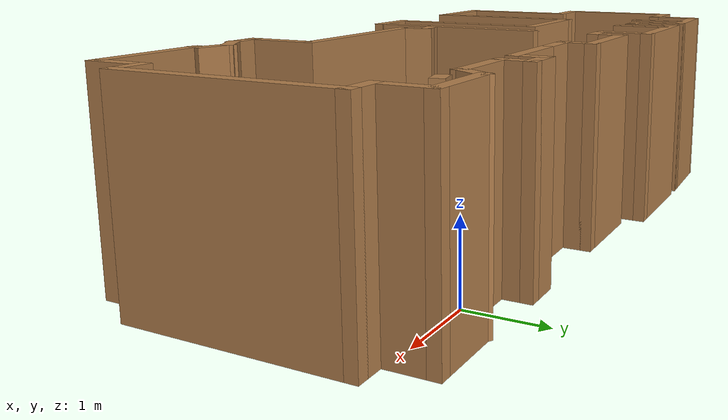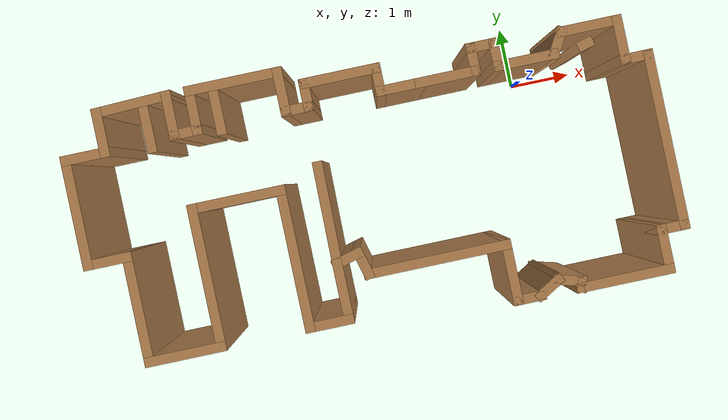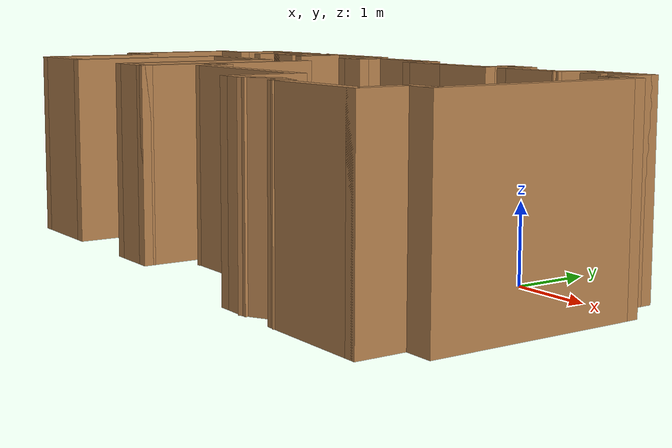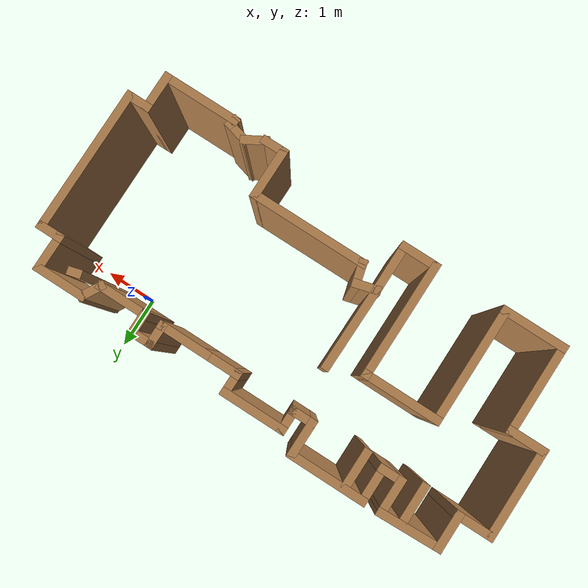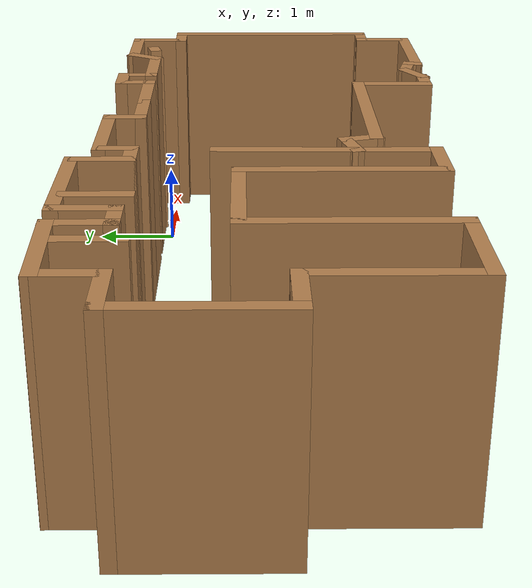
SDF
<?xml version='1.0'?>
<sdf version='1.6'>
  <model name='map_18'>
    <pose frame=''>-2.70114 -1.26619 0 0 -0 0</pose>
    <link name='Wall_10'>
      <collision name='Wall_10_Collision'>
        <geometry>
          <box>
            <size>1.25 0.15 2.5</size>
          </box>
        </geometry>
        <pose frame=''>0 0 1.25 0 -0 0</pose>
      </collision>
      <visual name='Wall_10_Visual'>
        <pose frame=''>0 0 1.25 0 -0 0</pose>
        <geometry>
          <box>
            <size>1.25 0.15 2.5</size>
          </box>
        </geometry>
        <material>
          <script>
            <uri>file://media/materials/scripts/gazebo.material</uri>
            <name>Gazebo/Wood</name>
          </script>
          <ambient>1 1 1 1</ambient>
        </material>
        <meta>
          <layer>0</layer>
        </meta>
      </visual>
      <pose frame=''>-3.27198 -1.78163 0 0 -0 0</pose>
    </link>
    <link name='Wall_11'>
      <collision name='Wall_11_Collision'>
        <geometry>
          <box>
            <size>2.25 0.15 2.5</size>
          </box>
        </geometry>
        <pose frame=''>0 0 1.25 0 -0 0</pose>
      </collision>
      <visual name='Wall_11_Visual'>
        <pose frame=''>0 0 1.25 0 -0 0</pose>
        <geometry>
          <box>
            <size>2.25 0.15 2.5</size>
          </box>
        </geometry>
        <material>
          <script>
            <uri>file://media/materials/scripts/gazebo.material</uri>
            <name>Gazebo/Wood</name>
          </script>
          <ambient>1 1 1 1</ambient>
        </material>
        <meta>
          <layer>0</layer>
        </meta>
      </visual>
      <pose frame=''>-2.72198 -0.731633 0 0 -0 1.5708</pose>
    </link>
    <link name='Wall_12'>
      <collision name='Wall_12_Collision'>
        <geometry>
          <box>
            <size>1.5 0.15 2.5</size>
          </box>
        </geometry>
        <pose frame=''>0 0 1.25 0 -0 0</pose>
      </collision>
      <visual name='Wall_12_Visual'>
        <pose frame=''>0 0 1.25 0 -0 0</pose>
        <geometry>
          <box>
            <size>1.5 0.15 2.5</size>
          </box>
        </geometry>
        <material>
          <script>
            <uri>file://media/materials/scripts/gazebo.material</uri>
            <name>Gazebo/Wood</name>
          </script>
          <ambient>1 1 1 1</ambient>
        </material>
        <meta>
          <layer>0</layer>
        </meta>
      </visual>
      <pose frame=''>-2.04698 0.318367 0 0 -0 0</pose>
    </link>
    <link name='Wall_13'>
      <collision name='Wall_13_Collision'>
        <geometry>
          <box>
            <size>2.25 0.15 2.5</size>
          </box>
        </geometry>
        <pose frame=''>0 0 1.25 0 -0 0</pose>
      </collision>
      <visual name='Wall_13_Visual'>
        <pose frame=''>0 0 1.25 0 -0 0</pose>
        <geometry>
          <box>
            <size>2.25 0.15 2.5</size>
          </box>
        </geometry>
        <material>
          <script>
            <uri>file://media/materials/scripts/gazebo.material</uri>
            <name>Gazebo/Wood</name>
          </script>
          <ambient>1 1 1 1</ambient>
        </material>
        <meta>
          <layer>0</layer>
        </meta>
      </visual>
      <pose frame=''>-1.37198 -0.731633 0 0 -0 -1.5708</pose>
    </link>
    <link name='Wall_14'>
      <collision name='Wall_14_Collision'>
        <geometry>
          <box>
            <size>0.75 0.15 2.5</size>
          </box>
        </geometry>
        <pose frame=''>0 0 1.25 0 -0 0</pose>
      </collision>
      <visual name='Wall_14_Visual'>
        <pose frame=''>0 0 1.25 0 -0 0</pose>
        <geometry>
          <box>
            <size>0.75 0.15 2.5</size>
          </box>
        </geometry>
        <material>
          <script>
            <uri>file://media/materials/scripts/gazebo.material</uri>
            <name>Gazebo/Wood</name>
          </script>
          <ambient>1 1 1 1</ambient>
        </material>
        <meta>
          <layer>0</layer>
        </meta>
      </visual>
      <pose frame=''>-1.07198 -1.78163 0 0 -0 0</pose>
    </link>
    <link name='Wall_15'>
      <collision name='Wall_15_Collision'>
        <geometry>
          <box>
            <size>1 0.15 2.5</size>
          </box>
        </geometry>
        <pose frame=''>0 0 1.25 0 -0 0</pose>
      </collision>
      <visual name='Wall_15_Visual'>
        <pose frame=''>0 0 1.25 0 -0 0</pose>
        <geometry>
          <box>
            <size>1 0.15 2.5</size>
          </box>
        </geometry>
        <material>
          <script>
            <uri>file://media/materials/scripts/gazebo.material</uri>
            <name>Gazebo/Wood</name>
          </script>
          <ambient>1 1 1 1</ambient>
        </material>
        <meta>
          <layer>0</layer>
        </meta>
      </visual>
      <pose frame=''>-0.771981 -1.35663 0 0 -0 1.5708</pose>
    </link>
    <link name='Wall_16'>
      <collision name='Wall_16_Collision'>
        <geometry>
          <box>
            <size>0.5 0.15 2.5</size>
          </box>
        </geometry>
        <pose frame=''>0 0 1.25 0 -0 0</pose>
      </collision>
      <visual name='Wall_16_Visual'>
        <pose frame=''>0 0 1.25 0 -0 0</pose>
        <geometry>
          <box>
            <size>0.5 0.15 2.5</size>
          </box>
        </geometry>
        <material>
          <script>
            <uri>file://media/materials/scripts/gazebo.material</uri>
            <name>Gazebo/Wood</name>
          </script>
          <ambient>1 1 1 1</ambient>
        </material>
        <meta>
          <layer>0</layer>
        </meta>
      </visual>
      <pose frame=''>-0.602944 -0.88634 0 0 -0 0.261799</pose>
    </link>
    <link name='Wall_17'>
      <collision name='Wall_17_Collision'>
        <geometry>
          <box>
            <size>0.5 0.15 2.5</size>
          </box>
        </geometry>
        <pose frame=''>0 0 1.25 0 -0 0</pose>
      </collision>
      <visual name='Wall_17_Visual'>
        <pose frame=''>0 0 1.25 0 -0 0</pose>
        <geometry>
          <box>
            <size>0.5 0.15 2.5</size>
          </box>
        </geometry>
        <material>
          <script>
            <uri>file://media/materials/scripts/gazebo.material</uri>
            <name>Gazebo/Wood</name>
          </script>
          <ambient>1 1 1 1</ambient>
        </material>
        <meta>
          <layer>0</layer>
        </meta>
      </visual>
      <pose frame=''>-0.388613 -1.01008 0 0 -0 -1.309</pose>
    </link>
    <link name='Wall_18'>
      <collision name='Wall_18_Collision'>
        <geometry>
          <box>
            <size>2.25 0.15 2.5</size>
          </box>
        </geometry>
        <pose frame=''>0 0 1.25 0 -0 0</pose>
      </collision>
      <visual name='Wall_18_Visual'>
        <pose frame=''>0 0 1.25 0 -0 0</pose>
        <geometry>
          <box>
            <size>2.25 0.15 2.5</size>
          </box>
        </geometry>
        <material>
          <script>
            <uri>file://media/materials/scripts/gazebo.material</uri>
            <name>Gazebo/Wood</name>
          </script>
          <ambient>1 1 1 1</ambient>
        </material>
        <meta>
          <layer>0</layer>
        </meta>
      </visual>
      <pose frame=''>0.70668 -1.17912 0 0 -0 0</pose>
    </link>
    <link name='Wall_19'>
      <collision name='Wall_19_Collision'>
        <geometry>
          <box>
            <size>1 0.15 2.5</size>
          </box>
        </geometry>
        <pose frame=''>0 0 1.25 0 -0 0</pose>
      </collision>
      <visual name='Wall_19_Visual'>
        <pose frame=''>0 0 1.25 0 -0 0</pose>
        <geometry>
          <box>
            <size>1 0.15 2.5</size>
          </box>
        </geometry>
        <material>
          <script>
            <uri>file://media/materials/scripts/gazebo.material</uri>
            <name>Gazebo/Wood</name>
          </script>
          <ambient>1 1 1 1</ambient>
        </material>
        <meta>
          <layer>0</layer>
        </meta>
      </visual>
      <pose frame=''>1.75668 -1.60412 0 0 -0 -1.5708</pose>
    </link>
    <link name='Wall_20'>
      <collision name='Wall_20_Collision'>
        <geometry>
          <box>
            <size>0.5 0.15 2.5</size>
          </box>
        </geometry>
        <pose frame=''>0 0 1.25 0 -0 0</pose>
      </collision>
      <visual name='Wall_20_Visual'>
        <pose frame=''>0 0 1.25 0 -0 0</pose>
        <geometry>
          <box>
            <size>0.5 0.15 2.5</size>
          </box>
        </geometry>
        <material>
          <script>
            <uri>file://media/materials/scripts/gazebo.material</uri>
            <name>Gazebo/Wood</name>
          </script>
          <ambient>1 1 1 1</ambient>
        </material>
        <meta>
          <layer>0</layer>
        </meta>
      </visual>
      <pose frame=''>1.93168 -2.02912 0 0 -0 0</pose>
    </link>
    <link name='Wall_21'>
      <collision name='Wall_21_Collision'>
        <geometry>
          <box>
            <size>0.5 0.15 2.5</size>
          </box>
        </geometry>
        <pose frame=''>0 0 1.25 0 -0 0</pose>
      </collision>
      <visual name='Wall_21_Visual'>
        <pose frame=''>0 0 1.25 0 -0 0</pose>
        <geometry>
          <box>
            <size>0.5 0.15 2.5</size>
          </box>
        </geometry>
        <material>
          <script>
            <uri>file://media/materials/scripts/gazebo.material</uri>
            <name>Gazebo/Wood</name>
          </script>
          <ambient>1 1 1 1</ambient>
        </material>
        <meta>
          <layer>0</layer>
        </meta>
      </visual>
      <pose frame=''>2.25823 -1.94162 0 0 -0 0.523599</pose>
    </link>
    <link name='Wall_25'>
      <collision name='Wall_25_Collision'>
        <geometry>
          <box>
            <size>0.5 0.15 2.5</size>
          </box>
        </geometry>
        <pose frame=''>0 0 1.25 0 -0 0</pose>
      </collision>
      <visual name='Wall_25_Visual'>
        <pose frame=''>0 0 1.25 0 -0 0</pose>
        <geometry>
          <box>
            <size>0.5 0.15 2.5</size>
          </box>
        </geometry>
        <material>
          <script>
            <uri>file://media/materials/scripts/gazebo.material</uri>
            <name>Gazebo/Wood</name>
          </script>
          <ambient>1 1 1 1</ambient>
        </material>
        <meta>
          <layer>0</layer>
        </meta>
      </visual>
      <pose frame=''>2.57883 -1.89941 0 0 -0 -0.261799</pose>
    </link>
    <link name='Wall_26'>
      <collision name='Wall_26_Collision'>
        <geometry>
          <box>
            <size>0.25 0.15 2.5</size>
          </box>
        </geometry>
        <pose frame=''>0 0 1.25 0 -0 0</pose>
      </collision>
      <visual name='Wall_26_Visual'>
        <pose frame=''>0 0 1.25 0 -0 0</pose>
        <geometry>
          <box>
            <size>0.25 0.15 2.5</size>
          </box>
        </geometry>
        <material>
          <script>
            <uri>file://media/materials/scripts/gazebo.material</uri>
            <name>Gazebo/Wood</name>
          </script>
          <ambient>1 1 1 1</ambient>
        </material>
        <meta>
          <layer>0</layer>
        </meta>
      </visual>
      <pose frame=''>2.73492 -1.993 0 0 -0 -1.8326</pose>
    </link>
    <link name='Wall_27'>
      <collision name='Wall_27_Collision'>
        <geometry>
          <box>
            <size>1.5 0.15 2.5</size>
          </box>
        </geometry>
        <pose frame=''>0 0 1.25 0 -0 0</pose>
      </collision>
      <visual name='Wall_27_Visual'>
        <pose frame=''>0 0 1.25 0 -0 0</pose>
        <geometry>
          <box>
            <size>1.5 0.15 2.5</size>
          </box>
        </geometry>
        <material>
          <script>
            <uri>file://media/materials/scripts/gazebo.material</uri>
            <name>Gazebo/Wood</name>
          </script>
          <ambient>1 1 1 1</ambient>
        </material>
        <meta>
          <layer>0</layer>
        </meta>
      </visual>
      <pose frame=''>3.39698 -2.0413 0 0 -0 0</pose>
    </link>
    <link name='Wall_28'>
      <collision name='Wall_28_Collision'>
        <geometry>
          <box>
            <size>0.75 0.15 2.5</size>
          </box>
        </geometry>
        <pose frame=''>0 0 1.25 0 -0 0</pose>
      </collision>
      <visual name='Wall_28_Visual'>
        <pose frame=''>0 0 1.25 0 -0 0</pose>
        <geometry>
          <box>
            <size>0.75 0.15 2.5</size>
          </box>
        </geometry>
        <material>
          <script>
            <uri>file://media/materials/scripts/gazebo.material</uri>
            <name>Gazebo/Wood</name>
          </script>
          <ambient>1 1 1 1</ambient>
        </material>
        <meta>
          <layer>0</layer>
        </meta>
      </visual>
      <pose frame=''>4.07198 -1.7413 0 0 -0 1.5708</pose>
    </link>
    <link name='Wall_29'>
      <collision name='Wall_29_Collision'>
        <geometry>
          <box>
            <size>0.5 0.15 2.5</size>
          </box>
        </geometry>
        <pose frame=''>0 0 1.25 0 -0 0</pose>
      </collision>
      <visual name='Wall_29_Visual'>
        <pose frame=''>0 0 1.25 0 -0 0</pose>
        <geometry>
          <box>
            <size>0.5 0.15 2.5</size>
          </box>
        </geometry>
        <material>
          <script>
            <uri>file://media/materials/scripts/gazebo.material</uri>
            <name>Gazebo/Wood</name>
          </script>
          <ambient>1 1 1 1</ambient>
        </material>
        <meta>
          <layer>0</layer>
        </meta>
      </visual>
      <pose frame=''>4.24698 -1.4413 0 0 -0 0</pose>
    </link>
    <link name='Wall_30'>
      <collision name='Wall_30_Collision'>
        <geometry>
          <box>
            <size>2.75 0.15 2.5</size>
          </box>
        </geometry>
        <pose frame=''>0 0 1.25 0 -0 0</pose>
      </collision>
      <visual name='Wall_30_Visual'>
        <pose frame=''>0 0 1.25 0 -0 0</pose>
        <geometry>
          <box>
            <size>2.75 0.15 2.5</size>
          </box>
        </geometry>
        <material>
          <script>
            <uri>file://media/materials/scripts/gazebo.material</uri>
            <name>Gazebo/Wood</name>
          </script>
          <ambient>1 1 1 1</ambient>
        </material>
        <meta>
          <layer>0</layer>
        </meta>
      </visual>
      <pose frame=''>4.42198 -0.1413 0 0 -0 1.5708</pose>
    </link>
    <link name='Wall_31'>
      <collision name='Wall_31_Collision'>
        <geometry>
          <box>
            <size>0.5 0.15 2.5</size>
          </box>
        </geometry>
        <pose frame=''>0 0 1.25 0 -0 0</pose>
      </collision>
      <visual name='Wall_31_Visual'>
        <pose frame=''>0 0 1.25 0 -0 0</pose>
        <geometry>
          <box>
            <size>0.5 0.15 2.5</size>
          </box>
        </geometry>
        <material>
          <script>
            <uri>file://media/materials/scripts/gazebo.material</uri>
            <name>Gazebo/Wood</name>
          </script>
          <ambient>1 1 1 1</ambient>
        </material>
        <meta>
          <layer>0</layer>
        </meta>
      </visual>
      <pose frame=''>4.24698 1.1587 0 0 -0 3.14159</pose>
    </link>
    <link name='Wall_32'>
      <collision name='Wall_32_Collision'>
        <geometry>
          <box>
            <size>0.75 0.15 2.5</size>
          </box>
        </geometry>
        <pose frame=''>0 0 1.25 0 -0 0</pose>
      </collision>
      <visual name='Wall_32_Visual'>
        <pose frame=''>0 0 1.25 0 -0 0</pose>
        <geometry>
          <box>
            <size>0.75 0.15 2.5</size>
          </box>
        </geometry>
        <material>
          <script>
            <uri>file://media/materials/scripts/gazebo.material</uri>
            <name>Gazebo/Wood</name>
          </script>
          <ambient>1 1 1 1</ambient>
        </material>
        <meta>
          <layer>0</layer>
        </meta>
      </visual>
      <pose frame=''>4.07198 1.4587 0 0 -0 1.5708</pose>
    </link>
    <link name='Wall_33'>
      <collision name='Wall_33_Collision'>
        <geometry>
          <box>
            <size>1 0.15 2.5</size>
          </box>
        </geometry>
        <pose frame=''>0 0 1.25 0 -0 0</pose>
      </collision>
      <visual name='Wall_33_Visual'>
        <pose frame=''>0 0 1.25 0 -0 0</pose>
        <geometry>
          <box>
            <size>1 0.15 2.5</size>
          </box>
        </geometry>
        <material>
          <script>
            <uri>file://media/materials/scripts/gazebo.material</uri>
            <name>Gazebo/Wood</name>
          </script>
          <ambient>1 1 1 1</ambient>
        </material>
        <meta>
          <layer>0</layer>
        </meta>
      </visual>
      <pose frame=''>3.64698 1.7587 0 0 -0 3.14159</pose>
    </link>
    <link name='Wall_38'>
      <collision name='Wall_38_Collision'>
        <geometry>
          <box>
            <size>0.5 0.15 2.5</size>
          </box>
        </geometry>
        <pose frame=''>0 0 1.25 0 -0 0</pose>
      </collision>
      <visual name='Wall_38_Visual'>
        <pose frame=''>0 0 1.25 0 -0 0</pose>
        <geometry>
          <box>
            <size>0.5 0.15 2.5</size>
          </box>
        </geometry>
        <material>
          <script>
            <uri>file://media/materials/scripts/gazebo.material</uri>
            <name>Gazebo/Wood</name>
          </script>
          <ambient>1 1 1 1</ambient>
        </material>
        <meta>
          <layer>0</layer>
        </meta>
      </visual>
      <pose frame=''>3.13448 1.60715 0 0 -0 -2.0944</pose>
    </link>
    <link name='Wall_39'>
      <collision name='Wall_39_Collision'>
        <geometry>
          <box>
            <size>1 0.15 2.5</size>
          </box>
        </geometry>
        <pose frame=''>0 0 1.25 0 -0 0</pose>
      </collision>
      <visual name='Wall_39_Visual'>
        <pose frame=''>0 0 1.25 0 -0 0</pose>
        <geometry>
          <box>
            <size>1 0.15 2.5</size>
          </box>
        </geometry>
        <material>
          <script>
            <uri>file://media/materials/scripts/gazebo.material</uri>
            <name>Gazebo/Wood</name>
          </script>
          <ambient>1 1 1 1</ambient>
        </material>
        <meta>
          <layer>0</layer>
        </meta>
      </visual>
      <pose frame=''>2.62198 1.45559 0 0 -0 3.14159</pose>
    </link>
    <link name='Wall_40'>
      <collision name='Wall_40_Collision'>
        <geometry>
          <box>
            <size>0.5 0.15 2.5</size>
          </box>
        </geometry>
        <pose frame=''>0 0 1.25 0 -0 0</pose>
      </collision>
      <visual name='Wall_40_Visual'>
        <pose frame=''>0 0 1.25 0 -0 0</pose>
        <geometry>
          <box>
            <size>0.5 0.15 2.5</size>
          </box>
        </geometry>
        <material>
          <script>
            <uri>file://media/materials/scripts/gazebo.material</uri>
            <name>Gazebo/Wood</name>
          </script>
          <ambient>1 1 1 1</ambient>
        </material>
        <meta>
          <layer>0</layer>
        </meta>
      </visual>
      <pose frame=''>2.19698 1.63059 0 0 -0 1.5708</pose>
    </link>
    <link name='Wall_41'>
      <collision name='Wall_41_Collision'>
        <geometry>
          <box>
            <size>0.5 0.15 2.5</size>
          </box>
        </geometry>
        <pose frame=''>0 0 1.25 0 -0 0</pose>
      </collision>
      <visual name='Wall_41_Visual'>
        <pose frame=''>0 0 1.25 0 -0 0</pose>
        <geometry>
          <box>
            <size>0.5 0.15 2.5</size>
          </box>
        </geometry>
        <material>
          <script>
            <uri>file://media/materials/scripts/gazebo.material</uri>
            <name>Gazebo/Wood</name>
          </script>
          <ambient>1 1 1 1</ambient>
        </material>
        <meta>
          <layer>0</layer>
        </meta>
      </visual>
      <pose frame=''>2.02198 1.80559 0 0 -0 3.14159</pose>
    </link>
    <link name='Wall_42'>
      <collision name='Wall_42_Collision'>
        <geometry>
          <box>
            <size>0.5 0.15 2.5</size>
          </box>
        </geometry>
        <pose frame=''>0 0 1.25 0 -0 0</pose>
      </collision>
      <visual name='Wall_42_Visual'>
        <pose frame=''>0 0 1.25 0 -0 0</pose>
        <geometry>
          <box>
            <size>0.5 0.15 2.5</size>
          </box>
        </geometry>
        <material>
          <script>
            <uri>file://media/materials/scripts/gazebo.material</uri>
            <name>Gazebo/Wood</name>
          </script>
          <ambient>1 1 1 1</ambient>
        </material>
        <meta>
          <layer>0</layer>
        </meta>
      </visual>
      <pose frame=''>1.84698 1.63059 0 0 -0 -1.5708</pose>
    </link>
    <link name='Wall_43'>
      <collision name='Wall_43_Collision'>
        <geometry>
          <box>
            <size>1 0.15 2.5</size>
          </box>
        </geometry>
        <pose frame=''>0 0 1.25 0 -0 0</pose>
      </collision>
      <visual name='Wall_43_Visual'>
        <pose frame=''>0 0 1.25 0 -0 0</pose>
        <geometry>
          <box>
            <size>1 0.15 2.5</size>
          </box>
        </geometry>
        <material>
          <script>
            <uri>file://media/materials/scripts/gazebo.material</uri>
            <name>Gazebo/Wood</name>
          </script>
          <ambient>1 1 1 1</ambient>
        </material>
        <meta>
          <layer>0</layer>
        </meta>
      </visual>
      <pose frame=''>1.42198 1.45559 0 0 -0 3.14159</pose>
    </link>
    <link name='Wall_44'>
      <collision name='Wall_44_Collision'>
        <geometry>
          <box>
            <size>0.75 0.15 2.5</size>
          </box>
        </geometry>
        <pose frame=''>0 0 1.25 0 -0 0</pose>
      </collision>
      <visual name='Wall_44_Visual'>
        <pose frame=''>0 0 1.25 0 -0 0</pose>
        <geometry>
          <box>
            <size>0.75 0.15 2.5</size>
          </box>
        </geometry>
        <material>
          <script>
            <uri>file://media/materials/scripts/gazebo.material</uri>
            <name>Gazebo/Wood</name>
          </script>
          <ambient>1 1 1 1</ambient>
        </material>
        <meta>
          <layer>0</layer>
        </meta>
      </visual>
      <pose frame=''>0.696981 1.45559 0 0 -0 3.14159</pose>
    </link>
    <link name='Wall_45'>
      <collision name='Wall_45_Collision'>
        <geometry>
          <box>
            <size>0.5 0.15 2.5</size>
          </box>
        </geometry>
        <pose frame=''>0 0 1.25 0 -0 0</pose>
      </collision>
      <visual name='Wall_45_Visual'>
        <pose frame=''>0 0 1.25 0 -0 0</pose>
        <geometry>
          <box>
            <size>0.5 0.15 2.5</size>
          </box>
        </geometry>
        <material>
          <script>
            <uri>file://media/materials/scripts/gazebo.material</uri>
            <name>Gazebo/Wood</name>
          </script>
          <ambient>1 1 1 1</ambient>
        </material>
        <meta>
          <layer>0</layer>
        </meta>
      </visual>
      <pose frame=''>0.396981 1.63059 0 0 -0 1.5708</pose>
    </link>
    <link name='Wall_46'>
      <collision name='Wall_46_Collision'>
        <geometry>
          <box>
            <size>1.25 0.15 2.5</size>
          </box>
        </geometry>
        <pose frame=''>0 0 1.25 0 -0 0</pose>
      </collision>
      <visual name='Wall_46_Visual'>
        <pose frame=''>0 0 1.25 0 -0 0</pose>
        <geometry>
          <box>
            <size>1.25 0.15 2.5</size>
          </box>
        </geometry>
        <material>
          <script>
            <uri>file://media/materials/scripts/gazebo.material</uri>
            <name>Gazebo/Wood</name>
          </script>
          <ambient>1 1 1 1</ambient>
        </material>
        <meta>
          <layer>0</layer>
        </meta>
      </visual>
      <pose frame=''>-0.153019 1.80559 0 0 -0 3.14159</pose>
    </link>
    <link name='Wall_47'>
      <collision name='Wall_47_Collision'>
        <geometry>
          <box>
            <size>0.5 0.15 2.5</size>
          </box>
        </geometry>
        <pose frame=''>0 0 1.25 0 -0 0</pose>
      </collision>
      <visual name='Wall_47_Visual'>
        <pose frame=''>0 0 1.25 0 -0 0</pose>
        <geometry>
          <box>
            <size>0.5 0.15 2.5</size>
          </box>
        </geometry>
        <material>
          <script>
            <uri>file://media/materials/scripts/gazebo.material</uri>
            <name>Gazebo/Wood</name>
          </script>
          <ambient>1 1 1 1</ambient>
        </material>
        <meta>
          <layer>0</layer>
        </meta>
      </visual>
      <pose frame=''>-0.703019 1.63059 0 0 -0 -1.5708</pose>
    </link>
    <link name='Wall_48'>
      <collision name='Wall_48_Collision'>
        <geometry>
          <box>
            <size>0.5 0.15 2.5</size>
          </box>
        </geometry>
        <pose frame=''>0 0 1.25 0 -0 0</pose>
      </collision>
      <visual name='Wall_48_Visual'>
        <pose frame=''>0 0 1.25 0 -0 0</pose>
        <geometry>
          <box>
            <size>0.5 0.15 2.5</size>
          </box>
        </geometry>
        <material>
          <script>
            <uri>file://media/materials/scripts/gazebo.material</uri>
            <name>Gazebo/Wood</name>
          </script>
          <ambient>1 1 1 1</ambient>
        </material>
        <meta>
          <layer>0</layer>
        </meta>
      </visual>
      <pose frame=''>-0.878019 1.45559 0 0 -0 3.14159</pose>
    </link>
    <link name='Wall_5'>
      <collision name='Wall_5_Collision'>
        <geometry>
          <box>
            <size>0.75 0.15 2.5</size>
          </box>
        </geometry>
        <pose frame=''>0 0 1.25 0 -0 0</pose>
      </collision>
      <visual name='Wall_5_Visual'>
        <pose frame=''>0 0 1.25 0 -0 0</pose>
        <geometry>
          <box>
            <size>0.75 0.15 2.5</size>
          </box>
        </geometry>
        <material>
          <script>
            <uri>file://media/materials/scripts/gazebo.material</uri>
            <name>Gazebo/Wood</name>
          </script>
          <ambient>1 1 1 1</ambient>
        </material>
        <meta>
          <layer>0</layer>
        </meta>
      </visual>
      <pose frame=''>-3.82198 1.71837 0 0 -0 -1.5708</pose>
    </link>
    <link name='Wall_51'>
      <collision name='Wall_51_Collision'>
        <geometry>
          <box>
            <size>0.75 0.15 2.5</size>
          </box>
        </geometry>
        <pose frame=''>0 0 1.25 0 -0 0</pose>
      </collision>
      <visual name='Wall_51_Visual'>
        <pose frame=''>0 0 1.25 0 -0 0</pose>
        <geometry>
          <box>
            <size>0.75 0.15 2.5</size>
          </box>
        </geometry>
        <material>
          <script>
            <uri>file://media/materials/scripts/gazebo.material</uri>
            <name>Gazebo/Wood</name>
          </script>
          <ambient>1 1 1 1</ambient>
        </material>
        <meta>
          <layer>0</layer>
        </meta>
      </visual>
      <pose frame=''>-1.05302 1.75559 0 0 -0 1.5708</pose>
    </link>
    <link name='Wall_52'>
      <collision name='Wall_52_Collision'>
        <geometry>
          <box>
            <size>1.5 0.15 2.5</size>
          </box>
        </geometry>
        <pose frame=''>0 0 1.25 0 -0 0</pose>
      </collision>
      <visual name='Wall_52_Visual'>
        <pose frame=''>0 0 1.25 0 -0 0</pose>
        <geometry>
          <box>
            <size>1.5 0.15 2.5</size>
          </box>
        </geometry>
        <material>
          <script>
            <uri>file://media/materials/scripts/gazebo.material</uri>
            <name>Gazebo/Wood</name>
          </script>
          <ambient>1 1 1 1</ambient>
        </material>
        <meta>
          <layer>0</layer>
        </meta>
      </visual>
      <pose frame=''>-1.72802 2.05559 0 0 -0 3.14159</pose>
    </link>
    <link name='Wall_53'>
      <collision name='Wall_53_Collision'>
        <geometry>
          <box>
            <size>0.75 0.15 2.5</size>
          </box>
        </geometry>
        <pose frame=''>0 0 1.25 0 -0 0</pose>
      </collision>
      <visual name='Wall_53_Visual'>
        <pose frame=''>0 0 1.25 0 -0 0</pose>
        <geometry>
          <box>
            <size>0.75 0.15 2.5</size>
          </box>
        </geometry>
        <material>
          <script>
            <uri>file://media/materials/scripts/gazebo.material</uri>
            <name>Gazebo/Wood</name>
          </script>
          <ambient>1 1 1 1</ambient>
        </material>
        <meta>
          <layer>0</layer>
        </meta>
      </visual>
      <pose frame=''>-2.40302 1.75559 0 0 -0 -1.5708</pose>
    </link>
    <link name='Wall_54'>
      <collision name='Wall_54_Collision'>
        <geometry>
          <box>
            <size>0.5 0.15 2.5</size>
          </box>
        </geometry>
        <pose frame=''>0 0 1.25 0 -0 0</pose>
      </collision>
      <visual name='Wall_54_Visual'>
        <pose frame=''>0 0 1.25 0 -0 0</pose>
        <geometry>
          <box>
            <size>0.5 0.15 2.5</size>
          </box>
        </geometry>
        <material>
          <script>
            <uri>file://media/materials/scripts/gazebo.material</uri>
            <name>Gazebo/Wood</name>
          </script>
          <ambient>1 1 1 1</ambient>
        </material>
        <meta>
          <layer>0</layer>
        </meta>
      </visual>
      <pose frame=''>-2.57802 1.45559 0 0 -0 3.14159</pose>
    </link>
    <link name='Wall_55'>
      <collision name='Wall_55_Collision'>
        <geometry>
          <box>
            <size>0.75 0.15 2.5</size>
          </box>
        </geometry>
        <pose frame=''>0 0 1.25 0 -0 0</pose>
      </collision>
      <visual name='Wall_55_Visual'>
        <pose frame=''>0 0 1.25 0 -0 0</pose>
        <geometry>
          <box>
            <size>0.75 0.15 2.5</size>
          </box>
        </geometry>
        <material>
          <script>
            <uri>file://media/materials/scripts/gazebo.material</uri>
            <name>Gazebo/Wood</name>
          </script>
          <ambient>1 1 1 1</ambient>
        </material>
        <meta>
          <layer>0</layer>
        </meta>
      </visual>
      <pose frame=''>-2.75302 1.75559 0 0 -0 1.5708</pose>
    </link>
    <link name='Wall_56'>
      <collision name='Wall_56_Collision'>
        <geometry>
          <box>
            <size>1.21961 0.15 2.5</size>
          </box>
        </geometry>
        <pose frame=''>0 0 1.25 0 -0 0</pose>
      </collision>
      <visual name='Wall_56_Visual'>
        <pose frame=''>0 0 1.25 0 -0 0</pose>
        <geometry>
          <box>
            <size>1.21961 0.15 2.5</size>
          </box>
        </geometry>
        <material>
          <script>
            <uri>file://media/materials/scripts/gazebo.material</uri>
            <name>Gazebo/Wood</name>
          </script>
          <ambient>1 1 1 1</ambient>
        </material>
        <meta>
          <layer>0</layer>
        </meta>
      </visual>
      <pose frame=''>-3.2875 2.03698 0 0 -0 -3.10678</pose>
    </link>
    <link name='Wall_58'>
      <collision name='Wall_58_Collision'>
        <geometry>
          <box>
            <size>1.63214 0.15 2.5</size>
          </box>
        </geometry>
        <pose frame=''>0 0 1.25 0 -0 0</pose>
      </collision>
      <visual name='Wall_58_Visual'>
        <pose frame=''>0 0 1.25 0 -0 0</pose>
        <geometry>
          <box>
            <size>1.63214 0.15 2.5</size>
          </box>
        </geometry>
        <material>
          <script>
            <uri>file://media/materials/scripts/gazebo.material</uri>
            <name>Gazebo/Wood</name>
          </script>
          <ambient>1 1 1 1</ambient>
        </material>
        <meta>
          <layer>0</layer>
        </meta>
      </visual>
      <pose frame=''>-0.762881 -0.190621 0 0 -0 -1.58308</pose>
    </link>
    <link name='Wall_6'>
      <collision name='Wall_6_Collision'>
        <geometry>
          <box>
            <size>0.75 0.15 2.5</size>
          </box>
        </geometry>
        <pose frame=''>0 0 1.25 0 -0 0</pose>
      </collision>
      <visual name='Wall_6_Visual'>
        <pose frame=''>0 0 1.25 0 -0 0</pose>
        <geometry>
          <box>
            <size>0.75 0.15 2.5</size>
          </box>
        </geometry>
        <material>
          <script>
            <uri>file://media/materials/scripts/gazebo.material</uri>
            <name>Gazebo/Wood</name>
          </script>
          <ambient>1 1 1 1</ambient>
        </material>
        <meta>
          <layer>0</layer>
        </meta>
      </visual>
      <pose frame=''>-4.12198 1.41837 0 0 -0 3.14159</pose>
    </link>
    <link name='Wall_64'>
      <collision name='Wall_64_Collision'>
        <geometry>
          <box>
            <size>0.75 0.15 2.5</size>
          </box>
        </geometry>
        <pose frame=''>0 0 1.25 0 -0 0</pose>
      </collision>
      <visual name='Wall_64_Visual'>
        <pose frame=''>0 0 1.25 0 -0 0</pose>
        <geometry>
          <box>
            <size>0.75 0.15 2.5</size>
          </box>
        </geometry>
        <material>
          <script>
            <uri>file://media/materials/scripts/gazebo.material</uri>
            <name>Gazebo/Wood</name>
          </script>
          <ambient>1 1 1 1</ambient>
        </material>
        <meta>
          <layer>0</layer>
        </meta>
      </visual>
      <pose frame=''>-3.12106 1.63902 0 0 -0 -1.5708</pose>
    </link>
    <link name='Wall_66'>
      <collision name='Wall_66_Collision'>
        <geometry>
          <box>
            <size>0.75 0.15 2.5</size>
          </box>
        </geometry>
        <pose frame=''>0 0 1.25 0 -0 0</pose>
      </collision>
      <visual name='Wall_66_Visual'>
        <pose frame=''>0 0 1.25 0 -0 0</pose>
        <geometry>
          <box>
            <size>0.75 0.15 2.5</size>
          </box>
        </geometry>
        <material>
          <script>
            <uri>file://media/materials/scripts/gazebo.material</uri>
            <name>Gazebo/Wood</name>
          </script>
          <ambient>1 1 1 1</ambient>
        </material>
        <meta>
          <layer>0</layer>
        </meta>
      </visual>
      <pose frame=''>-2.04983 1.68357 0 0 -0 1.5708</pose>
    </link>
    <link name='Wall_69'>
      <collision name='Wall_69_Collision'>
        <geometry>
          <box>
            <size>0.25 0.15 2.5</size>
          </box>
        </geometry>
        <pose frame=''>0 0 1.25 0 -0 0</pose>
      </collision>
      <visual name='Wall_69_Visual'>
        <pose frame=''>0 0 1.25 0 -0 0</pose>
        <geometry>
          <box>
            <size>0.25 0.15 2.5</size>
          </box>
        </geometry>
        <material>
          <script>
            <uri>file://media/materials/scripts/gazebo.material</uri>
            <name>Gazebo/Wood</name>
          </script>
          <ambient>1 1 1 1</ambient>
        </material>
        <meta>
          <layer>0</layer>
        </meta>
      </visual>
      <pose frame=''>3.53572 1.50288 0 0 -0 -2.87979</pose>
    </link>
    <link name='Wall_7'>
      <collision name='Wall_7_Collision'>
        <geometry>
          <box>
            <size>1.75 0.15 2.5</size>
          </box>
        </geometry>
        <pose frame=''>0 0 1.25 0 -0 0</pose>
      </collision>
      <visual name='Wall_7_Visual'>
        <pose frame=''>0 0 1.25 0 -0 0</pose>
        <geometry>
          <box>
            <size>1.75 0.15 2.5</size>
          </box>
        </geometry>
        <material>
          <script>
            <uri>file://media/materials/scripts/gazebo.material</uri>
            <name>Gazebo/Wood</name>
          </script>
          <ambient>1 1 1 1</ambient>
        </material>
        <meta>
          <layer>0</layer>
        </meta>
      </visual>
      <pose frame=''>-4.42198 0.618367 0 0 -0 -1.5708</pose>
    </link>
    <link name='Wall_8'>
      <collision name='Wall_8_Collision'>
        <geometry>
          <box>
            <size>0.75 0.15 2.5</size>
          </box>
        </geometry>
        <pose frame=''>0 0 1.25 0 -0 0</pose>
      </collision>
      <visual name='Wall_8_Visual'>
        <pose frame=''>0 0 1.25 0 -0 0</pose>
        <geometry>
          <box>
            <size>0.75 0.15 2.5</size>
          </box>
        </geometry>
        <material>
          <script>
            <uri>file://media/materials/scripts/gazebo.material</uri>
            <name>Gazebo/Wood</name>
          </script>
          <ambient>1 1 1 1</ambient>
        </material>
        <meta>
          <layer>0</layer>
        </meta>
      </visual>
      <pose frame=''>-4.12198 -0.181633 0 0 -0 0</pose>
    </link>
    <link name='Wall_9'>
      <collision name='Wall_9_Collision'>
        <geometry>
          <box>
            <size>1.75 0.15 2.5</size>
          </box>
        </geometry>
        <pose frame=''>0 0 1.25 0 -0 0</pose>
      </collision>
      <visual name='Wall_9_Visual'>
        <pose frame=''>0 0 1.25 0 -0 0</pose>
        <geometry>
          <box>
            <size>1.75 0.15 2.5</size>
          </box>
        </geometry>
        <material>
          <script>
            <uri>file://media/materials/scripts/gazebo.material</uri>
            <name>Gazebo/Wood</name>
          </script>
          <ambient>1 1 1 1</ambient>
        </material>
        <meta>
          <layer>0</layer>
        </meta>
      </visual>
      <pose frame=''>-3.82198 -0.981633 0 0 -0 -1.5708</pose>
    </link>
    <static>1</static>
  </model>
</sdf>
